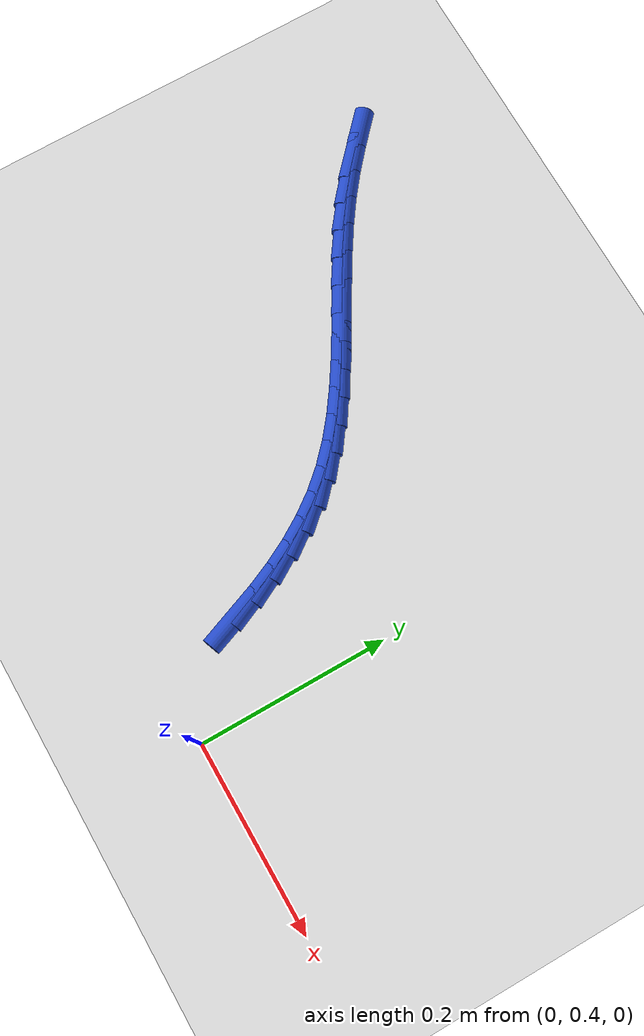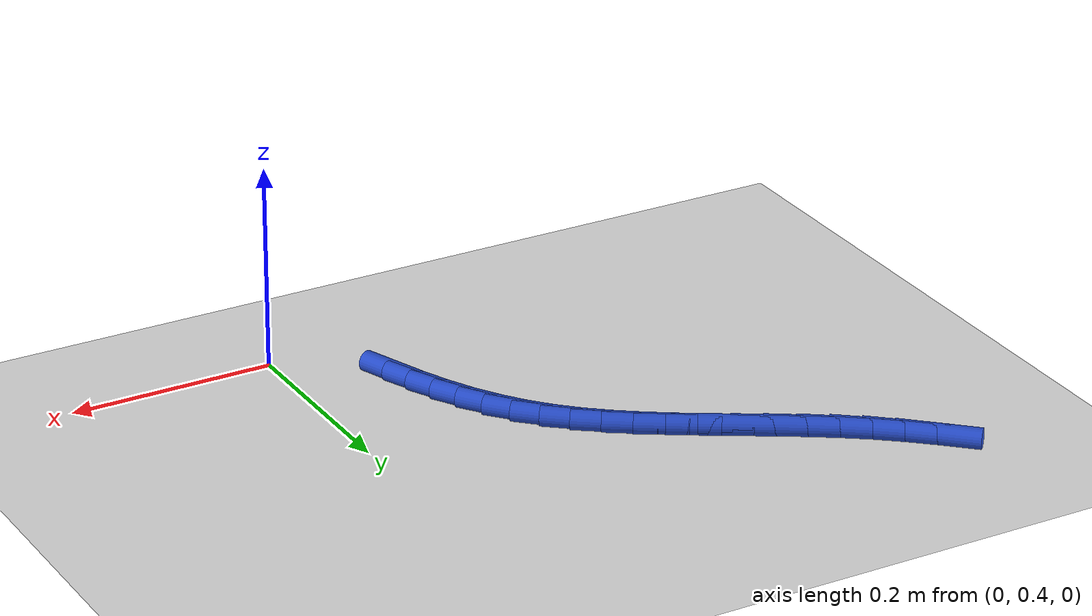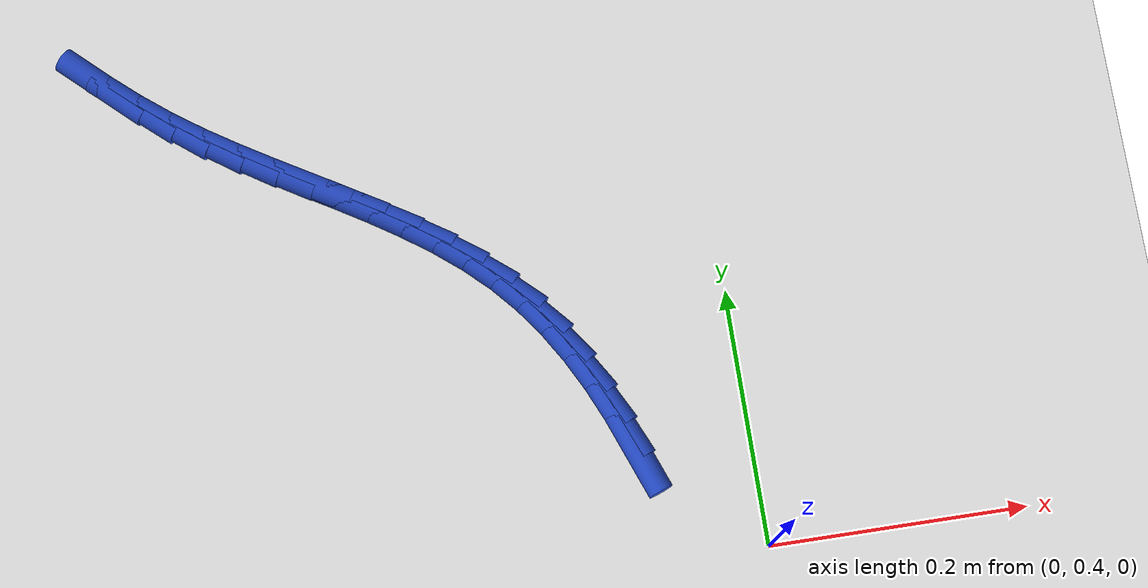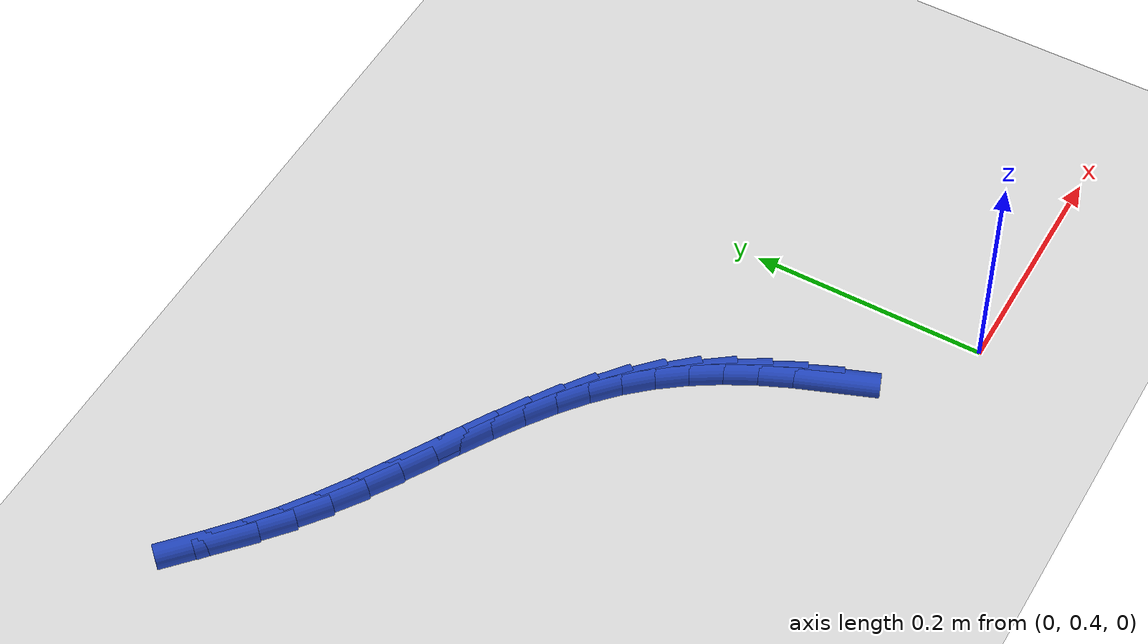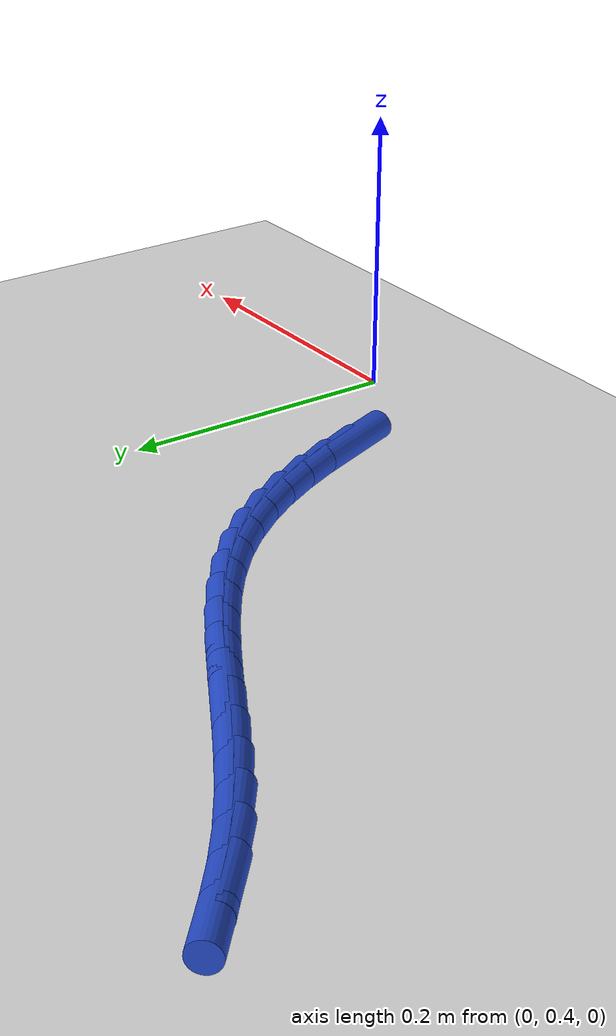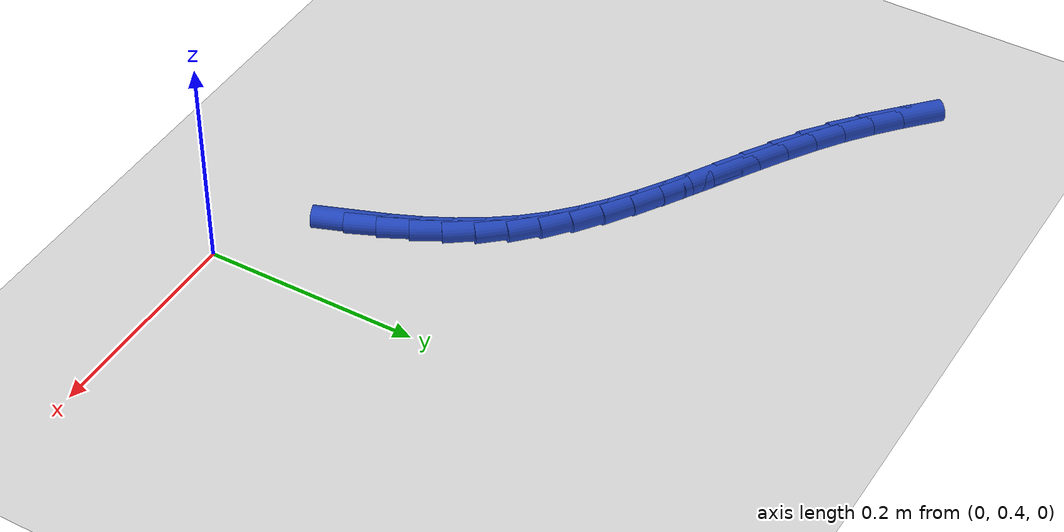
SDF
<sdf version="1.6">
 <world name="default">
  <model name="ground_plane">
   <static>1</static>
   <link name="link">
    <collision name="collision">
     <geometry><plane><normal>0 0 1</normal><size>100 100</size></plane></geometry>
     <surface><friction><ode><mu>100</mu><mu2>50</mu2></ode></friction></surface>
    </collision>
    <visual name="visual">
     <cast_shadows>0</cast_shadows>
     <geometry><plane><normal>0 0 1</normal><size>100 100</size></plane></geometry>
     <material>
      <script><uri>file://media/materials/scripts/gazebo.material</uri><name>Gazebo/WhiteGlow</name></script>
     </material>
    </visual>
   </link>
  </model>
  <model name="line">
   <link name="link_17">
    <pose>-0.08891884319601567 0.48967909066655546 0.01 0 1.57 -1.2083136573844964</pose>
    <collision name="collision">
     <geometry><cylinder><radius>0.01</radius><length>0.08</length></cylinder></geometry>
    </collision>
    <visual name="visual">
     <material>
      <script><name>Gazebo/Blue</name><uri>file://media/materials/scripts/gazebo.material</uri></script>
     </material>
     <geometry><cylinder><radius>0.01</radius><length>0.08</length></cylinder></geometry>
    </visual>
   </link>
   <link name="link_18">
    <pose>-0.09918427698283475 0.5167475326553356 0.01 0 1.57 -1.1541689465700455</pose>
    <collision name="collision">
     <geometry><cylinder><radius>0.01</radius><length>0.08</length></cylinder></geometry>
    </collision>
    <visual name="visual">
     <material>
      <script><name>Gazebo/Blue</name><uri>file://media/materials/scripts/gazebo.material</uri></script>
     </material>
     <geometry><cylinder><radius>0.01</radius><length>0.08</length></cylinder></geometry>
    </visual>
   </link>
   <link name="link_19">
    <pose>-0.11072265752272481 0.5428210006926305 0.01 0 1.57 -1.0911748389295841</pose>
    <collision name="collision">
     <geometry><cylinder><radius>0.01</radius><length>0.08</length></cylinder></geometry>
    </collision>
    <visual name="visual">
     <material>
      <script><name>Gazebo/Blue</name><uri>file://media/materials/scripts/gazebo.material</uri></script>
     </material>
     <geometry><cylinder><radius>0.01</radius><length>0.08</length></cylinder></geometry>
    </visual>
   </link>
   <link name="link_20">
    <pose>-0.12368480055619191 0.5677419764239418 0.01 0 1.57 -1.0189295101047202</pose>
    <collision name="collision">
     <geometry><cylinder><radius>0.01</radius><length>0.08</length></cylinder></geometry>
    </collision>
    <visual name="visual">
     <material>
      <script><name>Gazebo/Blue</name><uri>file://media/materials/scripts/gazebo.material</uri></script>
     </material>
     <geometry><cylinder><radius>0.01</radius><length>0.08</length></cylinder></geometry>
    </visual>
   </link>
   <link name="link_21">
    <pose>-0.13822152182374187 0.5913529414947698 0.01 0 1.57 -0.9373549128229389</pose>
    <collision name="collision">
     <geometry><cylinder><radius>0.01</radius><length>0.08</length></cylinder></geometry>
    </collision>
    <visual name="visual">
     <material>
      <script><name>Gazebo/Blue</name><uri>file://media/materials/scripts/gazebo.material</uri></script>
     </material>
     <geometry><cylinder><radius>0.01</radius><length>0.08</length></cylinder></geometry>
    </visual>
   </link>
   <link name="link_22">
    <pose>-0.15448363706588064 0.6134963775506154 0.01 0 1.57 -0.8469456136217031</pose>
    <collision name="collision">
     <geometry><cylinder><radius>0.01</radius><length>0.08</length></cylinder></geometry>
    </collision>
    <visual name="visual">
     <material>
      <script><name>Gazebo/Blue</name><uri>file://media/materials/scripts/gazebo.material</uri></script>
     </material>
     <geometry><cylinder><radius>0.01</radius><length>0.08</length></cylinder></geometry>
    </visual>
   </link>
   <link name="link_23">
    <pose>-0.172620886011357 0.6340158584470451 0.01 0 1.57 -0.7559809131656215</pose>
    <collision name="collision">
     <geometry><cylinder><radius>0.01</radius><length>0.08</length></cylinder></geometry>
    </collision>
    <visual name="visual">
     <material>
      <script><name>Gazebo/Blue</name><uri>file://media/materials/scripts/gazebo.material</uri></script>
     </material>
     <geometry><cylinder><radius>0.01</radius><length>0.08</length></cylinder></geometry>
    </visual>
   </link>
   <link name="link_24">
    <pose>-0.19264491560713903 0.6528951296736946 0.01 0 1.57 -0.6797770874953046</pose>
    <collision name="collision">
     <geometry><cylinder><radius>0.01</radius><length>0.08</length></cylinder></geometry>
    </collision>
    <visual name="visual">
     <material>
      <script><name>Gazebo/Blue</name><uri>file://media/materials/scripts/gazebo.material</uri></script>
     </material>
     <geometry><cylinder><radius>0.01</radius><length>0.08</length></cylinder></geometry>
    </visual>
   </link>
   <link name="link_25">
    <pose>-0.21429482104517897 0.6703945914763423 0.01 0 1.57 -0.6201363817404948</pose>
    <collision name="collision">
     <geometry><cylinder><radius>0.01</radius><length>0.08</length></cylinder></geometry>
    </collision>
    <visual name="visual">
     <material>
      <script><name>Gazebo/Blue</name><uri>file://media/materials/scripts/gazebo.material</uri></script>
     </material>
     <geometry><cylinder><radius>0.01</radius><length>0.08</length></cylinder></geometry>
    </visual>
   </link>
   <link name="link_26">
    <pose>-0.23727776657671398 0.6868070557306853 0.01 0 1.57 -0.5764697680447343</pose>
    <collision name="collision">
     <geometry><cylinder><radius>0.01</radius><length>0.08</length></cylinder></geometry>
    </collision>
    <visual name="visual">
     <material>
      <script><name>Gazebo/Blue</name><uri>file://media/materials/scripts/gazebo.material</uri></script>
     </material>
     <geometry><cylinder><radius>0.01</radius><length>0.08</length></cylinder></geometry>
    </visual>
   </link>
   <link name="link_27">
    <pose>-0.26130091645298115 0.7024253343124204 0.01 0 1.57 -0.5479426658410158</pose>
    <collision name="collision">
     <geometry><cylinder><radius>0.01</radius><length>0.08</length></cylinder></geometry>
    </collision>
    <visual name="visual">
     <material>
      <script><name>Gazebo/Blue</name><uri>file://media/materials/scripts/gazebo.material</uri></script>
     </material>
     <geometry><cylinder><radius>0.01</radius><length>0.08</length></cylinder></geometry>
    </visual>
   </link>
   <link name="link_28">
    <pose>-0.2860714349252176 0.7175422390972441 0.01 0 1.57 -0.5337854872727317</pose>
    <collision name="collision">
     <geometry><cylinder><radius>0.01</radius><length>0.08</length></cylinder></geometry>
    </collision>
    <visual name="visual">
     <material>
      <script><name>Gazebo/Blue</name><uri>file://media/materials/scripts/gazebo.material</uri></script>
     </material>
     <geometry><cylinder><radius>0.01</radius><length>0.08</length></cylinder></geometry>
    </visual>
   </link>
   <link name="link_29">
    <pose>-0.31129648624466033 0.7324505819608536 0.01 0 1.57 -0.533455093219091</pose>
    <collision name="collision">
     <geometry><cylinder><radius>0.01</radius><length>0.08</length></cylinder></geometry>
    </collision>
    <visual name="visual">
     <material>
      <script><name>Gazebo/Blue</name><uri>file://media/materials/scripts/gazebo.material</uri></script>
     </material>
     <geometry><cylinder><radius>0.01</radius><length>0.08</length></cylinder></geometry>
    </visual>
   </link>
   <link name="link_30">
    <pose>-0.3366832346625466 0.7474431747789455 0.01 0 1.57 -0.5466927672343924</pose>
    <collision name="collision">
     <geometry><cylinder><radius>0.01</radius><length>0.08</length></cylinder></geometry>
    </collision>
    <visual name="visual">
     <material>
      <script><name>Gazebo/Blue</name><uri>file://media/materials/scripts/gazebo.material</uri></script>
     </material>
     <geometry><cylinder><radius>0.01</radius><length>0.08</length></cylinder></geometry>
    </visual>
   </link>
   <link name="link_31">
    <pose>-0.36193884443011365 0.7628128294272165 0.01 0 1.57 -0.5735095934364645</pose>
    <collision name="collision">
     <geometry><cylinder><radius>0.01</radius><length>0.08</length></cylinder></geometry>
    </collision>
    <visual name="visual">
     <material>
      <script><name>Gazebo/Blue</name><uri>file://media/materials/scripts/gazebo.material</uri></script>
     </material>
     <geometry><cylinder><radius>0.01</radius><length>0.08</length></cylinder></geometry>
    </visual>
   </link>
   <link name="link_32">
    <pose>-0.38677047979859847 0.7788523577813637 0.01 0 1.57 -0.6141087539292146</pose>
    <collision name="collision">
     <geometry><cylinder><radius>0.01</radius><length>0.08</length></cylinder></geometry>
    </collision>
    <visual name="visual">
     <material>
      <script><name>Gazebo/Blue</name><uri>file://media/materials/scripts/gazebo.material</uri></script>
     </material>
     <geometry><cylinder><radius>0.01</radius><length>0.08</length></cylinder></geometry>
    </visual>
   </link>
   <link name="link_33">
    <pose>-0.41088530501923803 0.7958545717170833 0.01 0 1.57 -0.6671068904608767</pose>
    <collision name="collision">
     <geometry><cylinder><radius>0.01</radius><length>0.08</length></cylinder></geometry>
    </collision>
    <visual name="visual">
     <material>
      <script><name>Gazebo/Blue</name><uri>file://media/materials/scripts/gazebo.material</uri></script>
     </material>
     <geometry><cylinder><radius>0.01</radius><length>0.08</length></cylinder></geometry>
    </visual>
   </link>
   <link name="link_34">
    <pose>-0.4340206537252782 0.8140749523762698 0.01 0 1.57 -0.7149941939985172</pose>
    <collision name="collision">
     <geometry><cylinder><radius>0.01</radius><length>0.08</length></cylinder></geometry>
    </collision>
    <visual name="visual">
     <material>
      <script><name>Gazebo/Blue</name><uri>file://media/materials/scripts/gazebo.material</uri></script>
     </material>
     <geometry><cylinder><radius>0.01</radius><length>0.08</length></cylinder></geometry>
    </visual>
   </link>
   <link name="link_35">
    <pose>-0.45623929883126485 0.8333662916055669 0.01 0 1.57 -0.74704112518149</pose>
    <collision name="collision">
     <geometry><cylinder><radius>0.01</radius><length>0.08</length></cylinder></geometry>
    </collision>
    <visual name="visual">
     <material>
      <script><name>Gazebo/Blue</name><uri>file://media/materials/scripts/gazebo.material</uri></script>
     </material>
     <geometry><cylinder><radius>0.01</radius><length>0.08</length></cylinder></geometry>
    </visual>
   </link>
  </model>
 </world>
</sdf>
